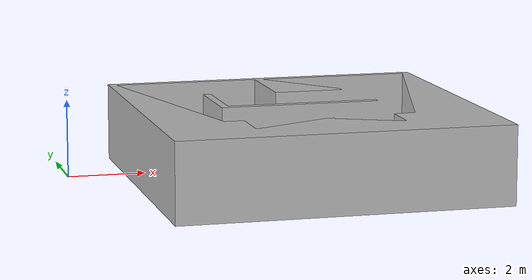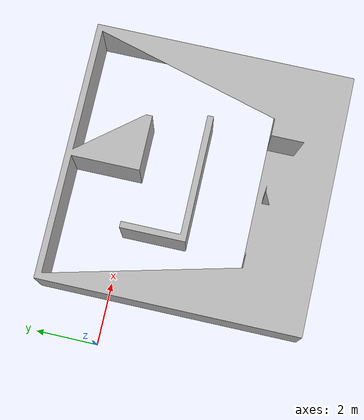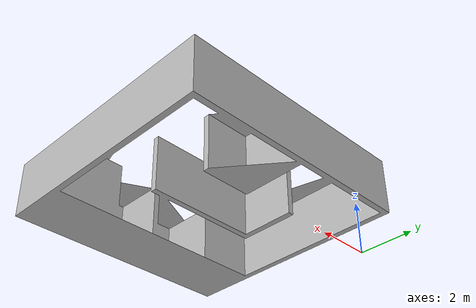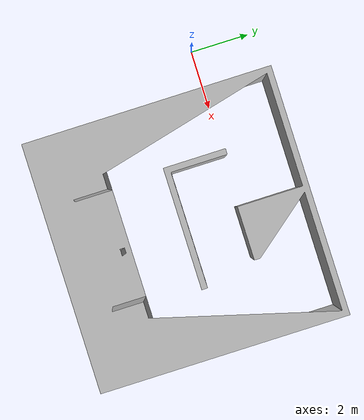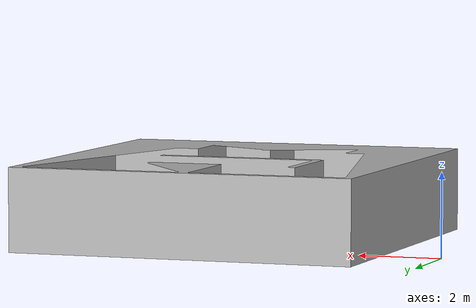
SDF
<?xml version="1.0" ?>
<sdf version="1.6">
  <model name="turtlebot3_closedmaze">
    <static>true</static>
    <link name="link">
      <visual name="visual">
        <geometry>
          <mesh>
            <uri>meshes/ClosedMaze.obj</uri>
            <scale>2 2 2</scale>
          </mesh>
        </geometry>
      </visual>
      <collision name="collision">
        <geometry>
          <mesh>
            <uri>meshes/ClosedMaze.obj</uri>
            <scale>2 2 2</scale>
          </mesh>
        </geometry>
      </collision>
    </link>
  </model>
</sdf>
